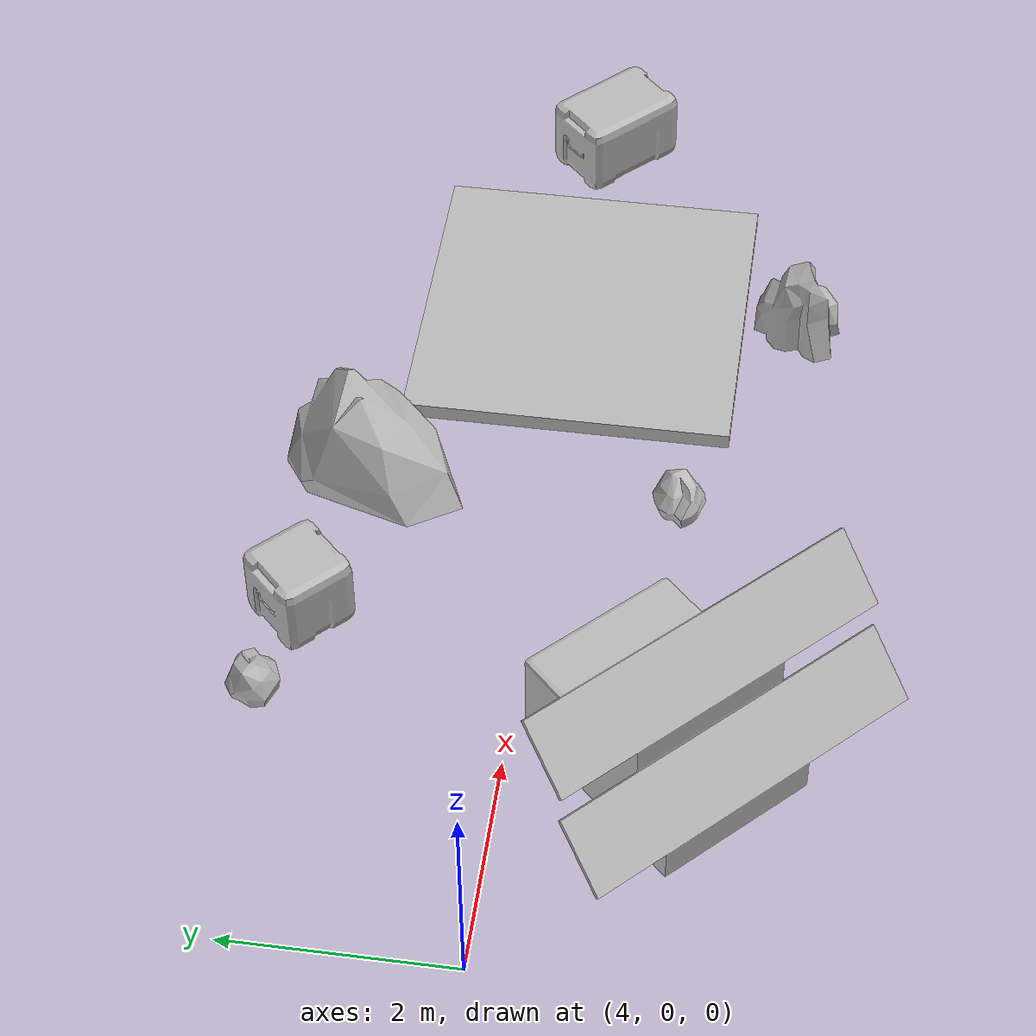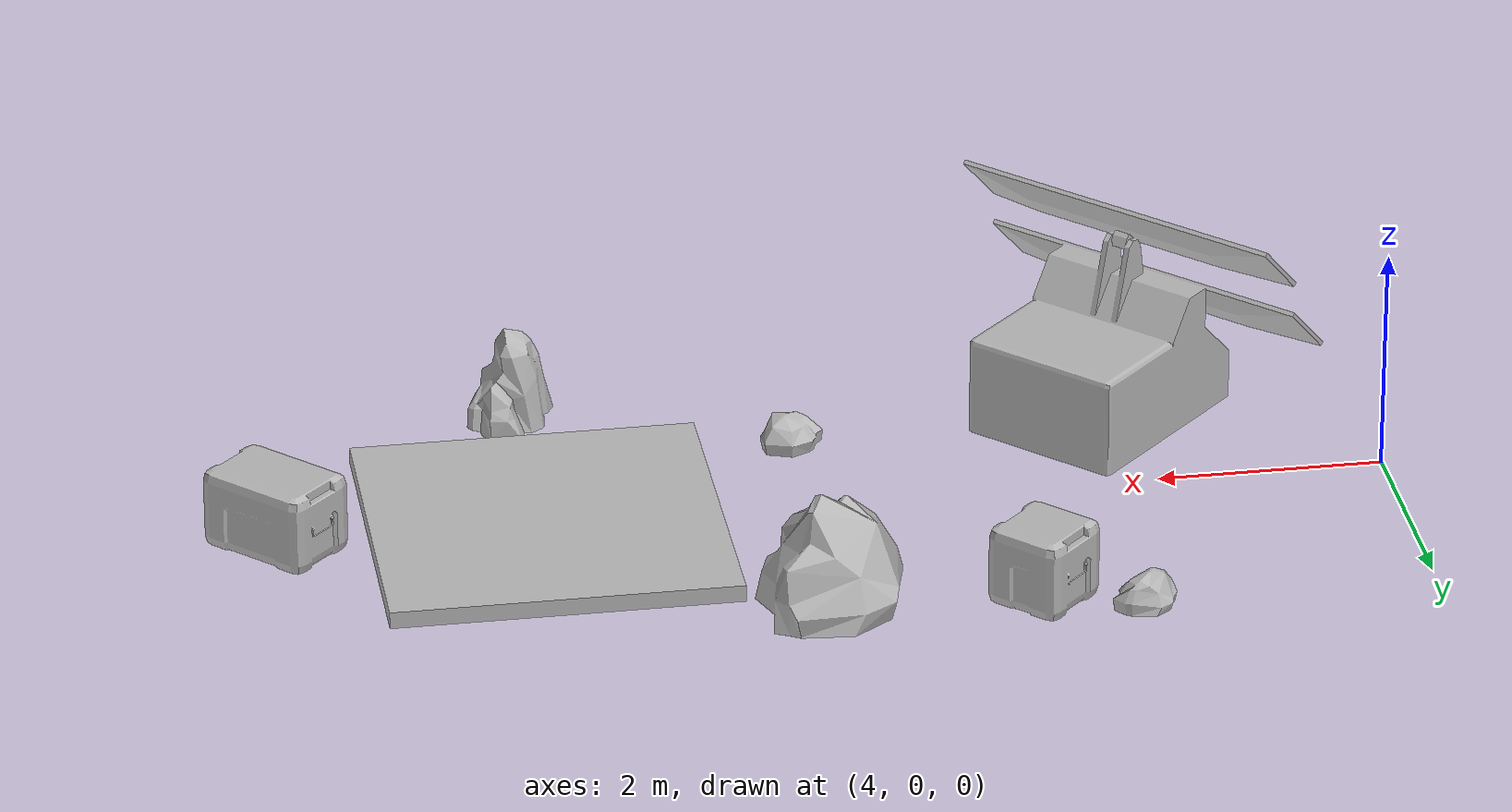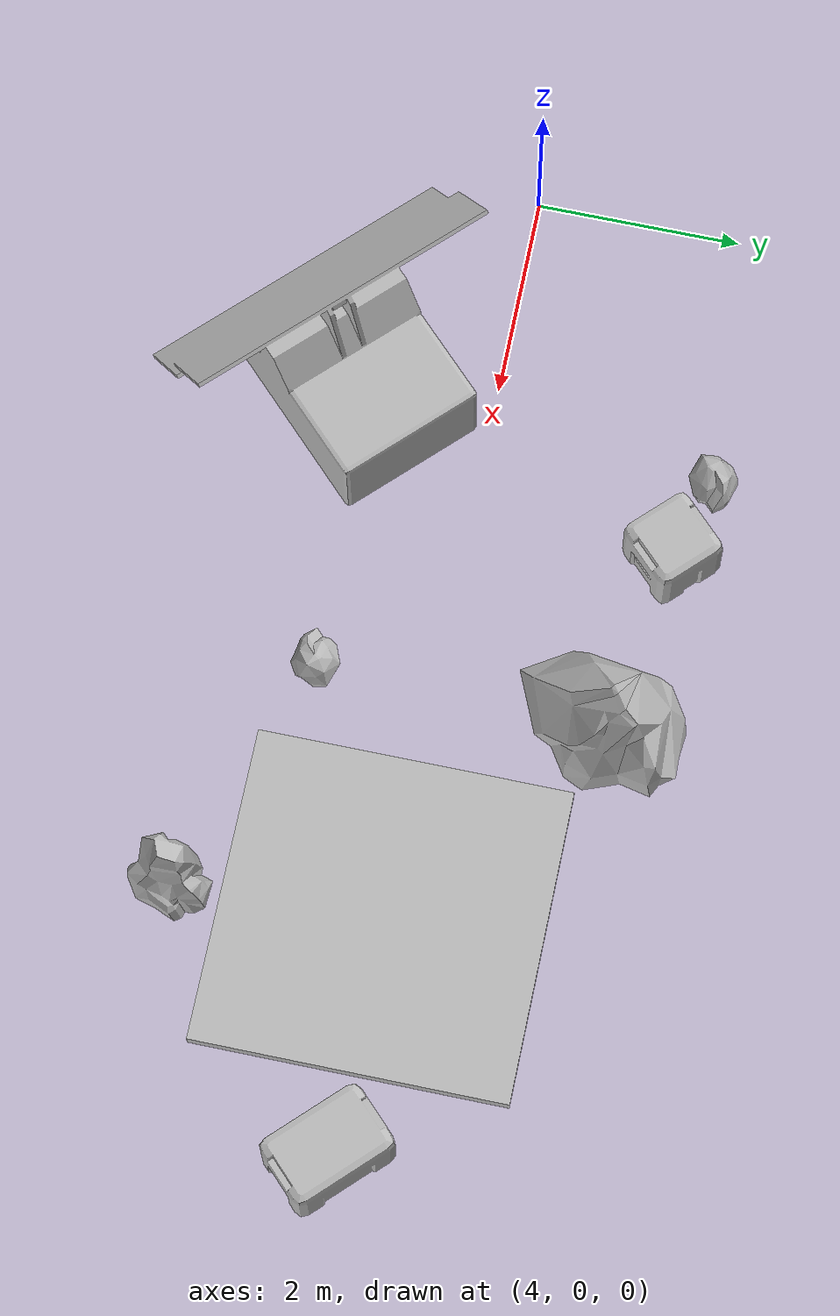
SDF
<sdf version="1.6">
 <world name="SRC_finals">
  <include>
   <name>bling_3</name>
   <pose>7.379157504695053
      1.9702076760939895
      0
      0
      0
      -0.7853981633974485</pose>
   <uri>model://mars_crate</uri>
  </include>
  <include>
   <name>bling_4</name>
   <pose>6.501954792220434
      2.2397649636193706
      0
      0
      0
      -2.83276944882399e-16</pose>
   <uri>model://mars_rock_1</uri>
  </include>
  <include>
   <pose>6.596640854788265
        -0.9985087296526027
        0.2
        0
        0
        2.356194490192345</pose>
   <uri>model://solar_array</uri>
  </include>
  <include>
   <name>bling_5</name>
   <pose>9.103909584440867
      1.8619999999999983
      0
      0
      0
      -1.8369701987210297e-16</pose>
   <uri>model://mars_rock_3</uri>
  </include>
  <include>
   <name>bling_6</name>
   <pose>9.103909584440867
      -1.1620000000000017
      0
      0
      0
      3.141592653589793</pose>
   <uri>model://mars_rock_1</uri>
  </include>
  <include>
   <name>walkway_8</name>
   <pose>11.389909584440868
      -1.9275845788553325e-15
      -0.052151
      0
      0
      1.5707963267948963</pose>
   <uri>model://walkway_finish_adjacent</uri>
  </include>
  <include>
   <name>bling_7</name>
   <pose>11.389909584440868
      -2.024000000000002
      0
      0
      0
      3.141592653589793</pose>
   <uri>model://mars_rock_2</uri>
  </include>
  <include>
   <name>bling_8</name>
   <pose>13.71390958444087
      -2.5947721550308107e-15
      0
      0
      0
      -0.7853981633974487</pose>
   <uri>model://mars_crate_long</uri>
  </include>
 </world>
</sdf>
